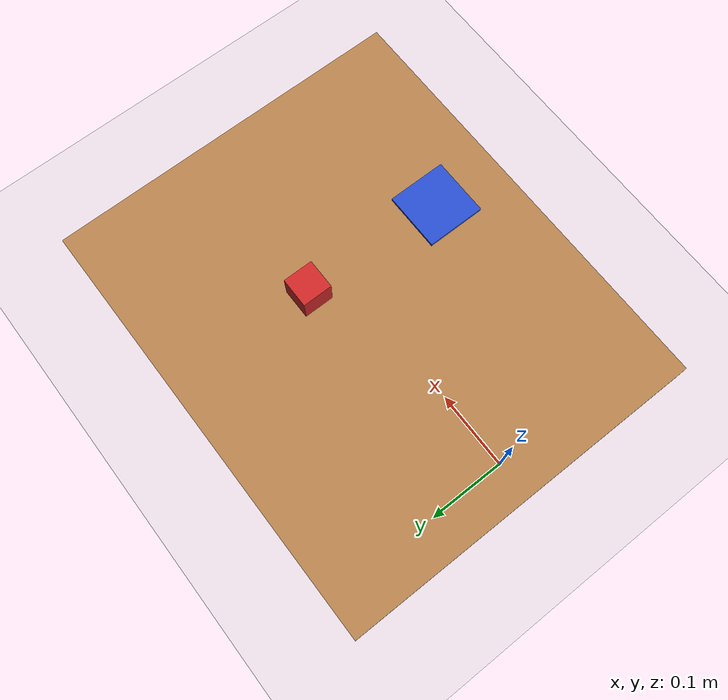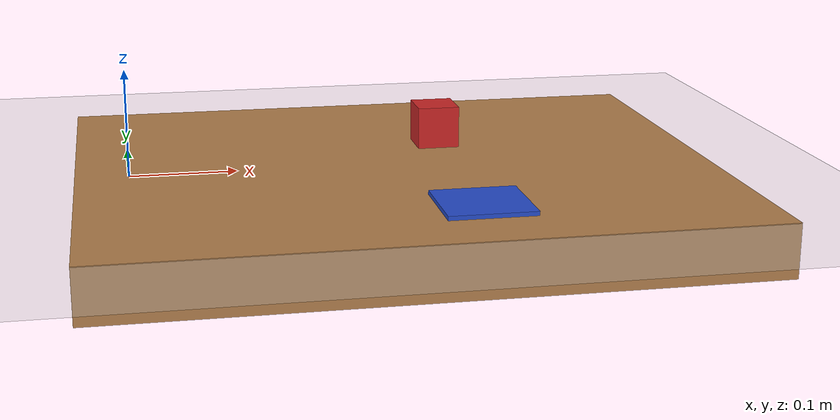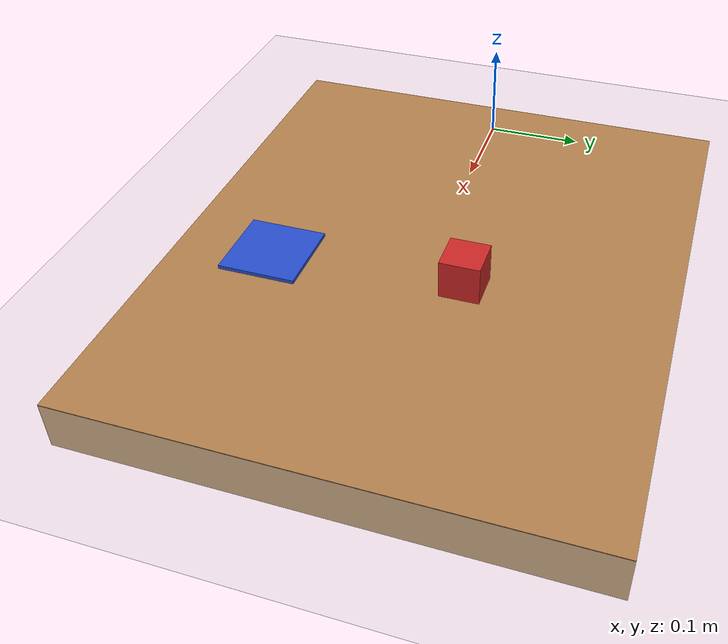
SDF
<?xml version="1.0"?>
<sdf version="1.6">
  <world name="pick_place">

    <!-- ── Lighting ── -->
    <light type="directional" name="sun">
      <cast_shadows>true</cast_shadows>
      <pose>0 0 10 0 0 0</pose>
      <diffuse>0.9 0.9 0.9 1</diffuse>
      <specular>0.2 0.2 0.2 1</specular>
      <attenuation><range>1000</range><constant>0.9</constant><linear>0.01</linear><quadratic>0.001</quadratic></attenuation>
      <direction>-0.5 0.1 -0.9</direction>
    </light>

    <!-- ── Physics ── -->
    <gravity>0 0 -9.81</gravity>
    <physics name="default_physics" default="0" type="ode">
      <max_step_size>0.001</max_step_size>
      <real_time_factor>1</real_time_factor>
      <real_time_update_rate>1000</real_time_update_rate>
    </physics>

    <!-- ── Ground plane ── -->
    <model name="ground_plane">
      <static>true</static>
      <link name="link">
        <collision name="collision">
          <geometry><plane><normal>0 0 1</normal><size>10 10</size></plane></geometry>
          <surface><friction><ode><mu>100</mu><mu2>50</mu2></ode></friction></surface>
        </collision>
        <visual name="visual">
          <geometry><plane><normal>0 0 1</normal><size>10 10</size></plane></geometry>
          <material><script><uri>file://media/materials/scripts/gazebo.material</uri><name>Gazebo/Grey</name></script></material>
        </visual>
      </link>
    </model>

    <!-- ── Work table ── -->
    <model name="table">
      <static>true</static>
      <pose>0.25 0 -0.025 0 0 0</pose>
      <link name="link">
        <collision name="collision">
          <geometry><box><size>0.6 0.5 0.05</size></box></geometry>
          <surface><friction><ode><mu>0.8</mu><mu2>0.8</mu2></ode></friction></surface>
        </collision>
        <visual name="visual">
          <geometry><box><size>0.6 0.5 0.05</size></box></geometry>
          <material><script><uri>file://media/materials/scripts/gazebo.material</uri><name>Gazebo/Wood</name></script></material>
        </visual>
      </link>
    </model>

    <!-- ── Pick object: red cube ── -->
    <model name="pick_cube">
      <pose>0.30 0.05 0.025 0 0 0</pose>
      <link name="link">
        <inertial><mass>0.05</mass><inertia><ixx>3.33e-5</ixx><ixy>0</ixy><ixz>0</ixz><iyy>3.33e-5</iyy><iyz>0</iyz><izz>3.33e-5</izz></inertia></inertial>
        <collision name="collision">
          <geometry><box><size>0.04 0.04 0.04</size></box></geometry>
          <surface><friction><ode><mu>0.6</mu><mu2>0.6</mu2></ode></friction>
            <contact><ode><kp>1e6</kp><kd>100</kd></ode></contact>
          </surface>
        </collision>
        <visual name="visual">
          <geometry><box><size>0.04 0.04 0.04</size></box></geometry>
          <material><script><uri>file://media/materials/scripts/gazebo.material</uri><name>Gazebo/Red</name></script></material>
        </visual>
      </link>
    </model>

    <!-- ── Place target zone (blue box — static marker) ── -->
    <model name="place_zone">
      <static>true</static>
      <pose>0.30 -0.15 0.002 0 0 0</pose>
      <link name="link">
        <visual name="visual">
          <geometry><box><size>0.08 0.08 0.004</size></box></geometry>
          <material><script><uri>file://media/materials/scripts/gazebo.material</uri><name>Gazebo/Blue</name></script></material>
        </visual>
      </link>
    </model>

    <!-- ── ROS clock plugin ── -->
    <plugin name="gazebo_ros_state" filename="libgazebo_ros_state.so">
      <ros><namespace>/gazebo</namespace></ros>
      <update_rate>100</update_rate>
    </plugin>

  </world>
</sdf>
